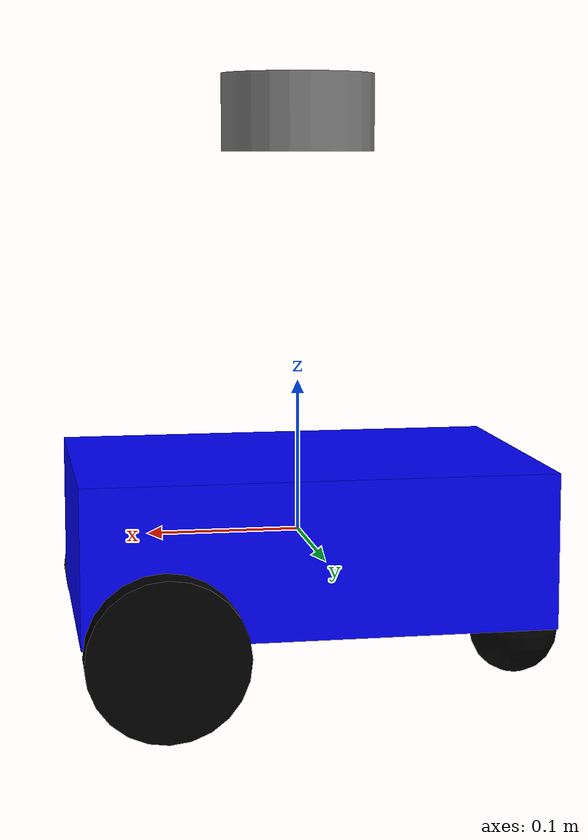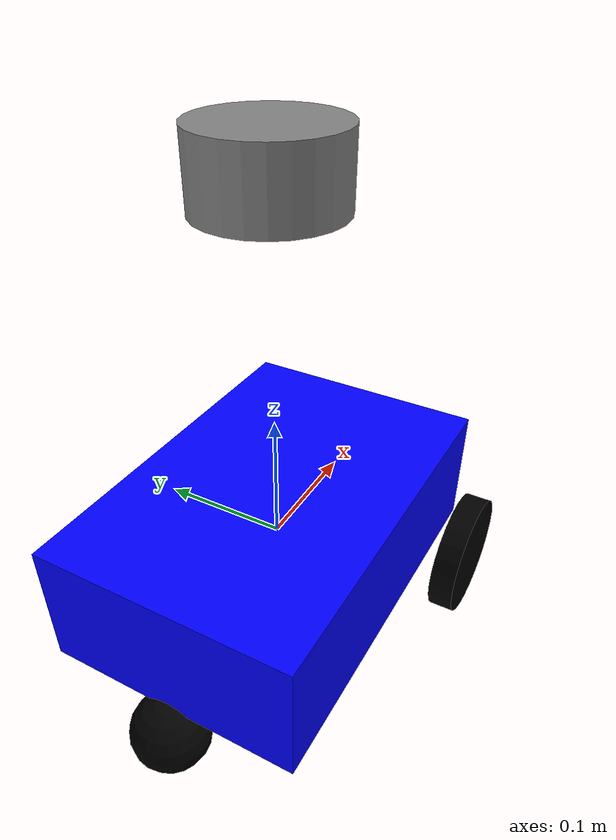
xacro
<?xml version="1.0"?>
<robot name="diff_bot" xmlns:xacro="http://www.ros.org/wiki/xacro">

  <!-- Base link -->
  <link name="base_link">
    <visual>
      <geometry>
        <box size="0.3 0.2 0.1"/>
      </geometry>
      <material name="blue">
        <color rgba="0 0 1 1"/>
      </material>
    </visual>
    <collision>
      <geometry>
        <box size="0.3 0.2 0.05"/>
      </geometry>
    </collision>
    <inertial>
      <mass value="1.0"/>
      <origin xyz="0 0 0.05" rpy="0 0 0"/>
      <inertia ixx="0.01" ixy="0.0" ixz="0.0" iyy="0.01" iyz="0.0" izz="0.01"/>
    </inertial>
  </link>

  <!-- Left wheel -->
  <link name="left_wheel_link">
    <visual>
      <geometry>
        <cylinder radius="0.05" length="0.02"/>
      </geometry>
      <material name="black">
        <color rgba="0 0 0 1"/>
      </material>
    </visual>
    <collision>
      <geometry>
        <cylinder radius="0.05" length="0.02"/>
      </geometry>
    </collision>
    <inertial>
      <mass value="0.1"/>
      <origin xyz="0 0 0" rpy="0 0 0"/>
      <inertia ixx="0.001" ixy="0.0" ixz="0.0" iyy="0.001" iyz="0.0" izz="0.001"/>
    </inertial>
  </link>

  <!-- Right wheel -->
  <link name="right_wheel_link">
    <visual>
      <geometry>
        <cylinder radius="0.05" length="0.02"/>
      </geometry>
      <material name="black">
        <color rgba="0 0 0 1"/>
      </material>
    </visual>
    <collision>
      <geometry>
        <cylinder radius="0.05" length="0.02"/>
      </geometry>
    </collision>
    <inertial>
      <mass value="0.1"/>
      <origin xyz="0 0 0" rpy="0 0 0"/>
      <inertia ixx="0.001" ixy="0.0" ixz="0.0" iyy="0.001" iyz="0.0" izz="0.001"/>
    </inertial>
  </link>

  <link name="caster_link">
    <visual>
      <geometry>
        <sphere radius="0.03"/>
      </geometry>
      <material name="black"/>
    </visual>

    <collision>
      <geometry>
        <sphere radius="0.03"/>
      </geometry>
    </collision>

    <inertial>
      <mass value="0.1"/>
      <inertia
        ixx="1e-4" ixy="0.0" ixz="0.0"
        iyy="1e-4" iyz="0.0"
        izz="1e-4"/>
    </inertial>
  </link>

  <link name="lidar_link">
    <visual>
      <geometry>
        <cylinder radius="0.05" length="0.05"/>
      </geometry>
      <material name="grey">
        <color rgba="0.5 0.5 0.5 1"/>
      </material>
    </visual>
    <collision>
      <geometry>
        <cylinder radius="0.05" length="0.05"/>
      </geometry>
    </collision>
    <inertial>
      <mass value="0.1"/>
      <inertia ixx="0.001" ixy="0" ixz="0" iyy="0.001" iyz="0" izz="0.001"/>
      <origin xyz="0 0 0" rpy="0 0 0"/>
    </inertial>
  </link>

  <!-- Joints -->

  <joint name="left_wheel_joint" type="continuous">
    <parent link="base_link"/>
    <child link="left_wheel_link"/>
    <origin xyz=".1 0.125 -0.05" rpy="${-pi/2} 0 0"/> <!-- Z = radius -->
    <axis xyz="0 0 1"/>                  <!-- rotate around X -->
  </joint>

  <joint name="right_wheel_joint" type="continuous">
    <parent link="base_link"/>
    <child link="right_wheel_link"/>
    <origin xyz=".1 -0.125 -0.05" rpy="${-pi/2} 0 0"/> <!-- Z = radius -->
    <axis xyz="0 0 1"/>                   <!-- rotate around X -->
  </joint>

  <joint name="caster_joint" type="fixed">
    <parent link="base_link"/>
    <child link="caster_link"/>
    <origin xyz="-0.15 0 -0.075" rpy="0 0 0"/>
    <dynamics damping="0.0" friction="0.0"/>
    <axis xyz="0 1 0"/>
  </joint>

  <joint name="lidar_joint" type="fixed">
    <parent link="base_link"/>
    <child link="lidar_link"/>
    <origin xyz="0 0 0.275" rpy="0 0 0"/>
  </joint>

</robot>
